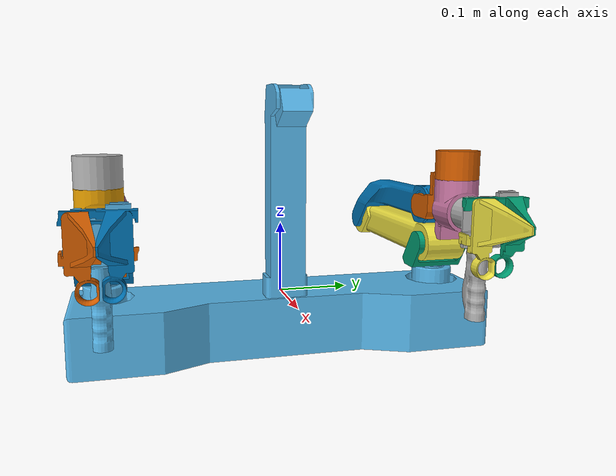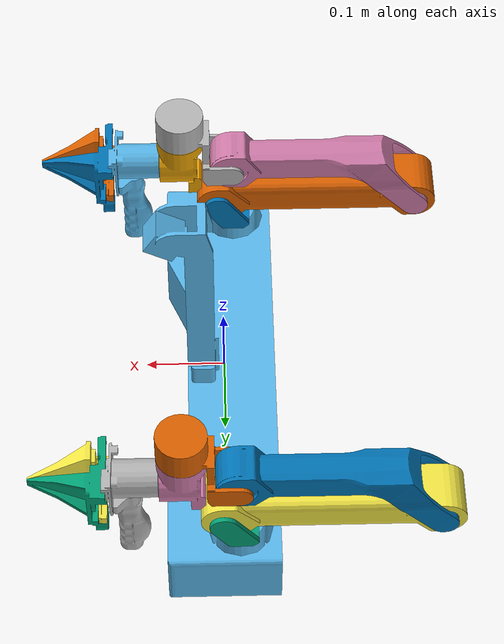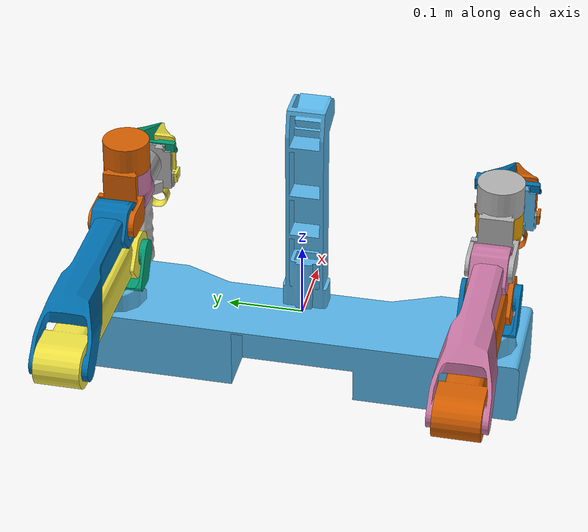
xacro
<?xml version="1.0"?>
<robot name="acone"
  xmlns:xacro="http://www.ros.org/wiki/xacro">

  <xacro:property name="mesh_dir" value="package://genie_sim_robot_model/robots/arx/acone/meshes" />

  <link name="base_link">
    <visual>
      <origin xyz="0 0 0" rpy="0 0 0"/>
      <geometry><sphere radius="0.001"/></geometry>
    </visual>
  </link>
  <link name="base_link_inertia">
    <inertial>
      <origin xyz="0.0040185 3.8157E-05 -0.024465" rpy="0 0 0" />
      <mass value="5.6137" />
      <inertia ixx="0.21931" ixy="0.00000" ixz="-0.00199" iyy="0.02598" iyz="0.00000" izz="0.20840" />
    </inertial>
    <visual>
      <origin xyz="0 0 0" rpy="0 0 0" />
      <geometry><mesh filename="${mesh_dir}/base_link.obj" /></geometry>
    </visual>
    <collision>
      <origin xyz="0 0 0" rpy="0 0 0" />
      <geometry><mesh filename="${mesh_dir}/base_link.obj" /></geometry>
    </collision>
  </link>
  <joint name="base_link-base_link_inertia" type="fixed">
    <origin xyz="0 0 0" rpy="0 0 0" />
    <parent link="base_link" />
    <child link="base_link_inertia" />
  </joint>

  <!-- ============================ LEFT ARM ============================ -->

  <link name="arm_l_link1">
    <inertial>
      <origin xyz="0.0054231 -0.0080289 0.017086" rpy="0 0 0" />
      <mass value="0.066982" />
      <inertia ixx="0.00008" ixy="0.00000" ixz="-0.00001" iyy="0.00003" iyz="0.00000" izz="0.00008" />
    </inertial>
    <visual>
      <origin xyz="0 0 0" rpy="0 0 0" />
      <geometry><mesh filename="${mesh_dir}/arm_l_link1.obj" /></geometry>
    </visual>
    <collision>
      <origin xyz="0 0 0" rpy="0 0 0" />
      <geometry><mesh filename="${mesh_dir}/arm_l_link1.obj" /></geometry>
    </collision>
  </link>
  <joint name="arm_l_joint1" type="revolute">
    <origin xyz="-0.01602 0.25 0.0215" rpy="0 0 0" />
    <parent link="base_link" />
    <child link="arm_l_link1" />
    <axis xyz="0 0 1" />
    <limit lower="-3.14159" upper="3.14159" effort="30" velocity="5.0" />
  </joint>

  <link name="arm_l_link2">
    <inertial>
      <origin xyz="-0.13234 -0.0040166 0.00010941" rpy="0 0 0" />
      <mass value="1.1068" />
      <inertia ixx="0.00054" ixy="0.00000" ixz="0.00004" iyy="0.01653" iyz="0.00000" izz="0.01655" />
    </inertial>
    <visual>
      <origin xyz="0 0 0" rpy="0 0 0" />
      <geometry><mesh filename="${mesh_dir}/arm_l_link2.obj" /></geometry>
    </visual>
    <collision>
      <origin xyz="0 0 0" rpy="0 0 0" />
      <geometry><mesh filename="${mesh_dir}/arm_l_link2.obj" /></geometry>
    </collision>
  </link>
  <joint name="arm_l_joint2" type="revolute">
    <origin xyz="0.02 0 0.04" rpy="0 0 0" />
    <parent link="arm_l_link1" />
    <child link="arm_l_link2" />
    <axis xyz="0 1 0" />
    <limit lower="-0.05" upper="3.5" effort="40" velocity="5.0" />
  </joint>

  <link name="arm_l_link3">
    <inertial>
      <origin xyz="0.18544 -0.00071369 0.051628" rpy="0 0 0" />
      <mass value="0.54316" />
      <inertia ixx="0.00036" ixy="-0.00003" ixz="-0.00039" iyy="0.00423" iyz="-0.00001" izz="0.00419" />
    </inertial>
    <visual>
      <origin xyz="0 0 0" rpy="0 0 0" />
      <geometry><mesh filename="${mesh_dir}/arm_l_link3.obj" /></geometry>
    </visual>
    <collision>
      <origin xyz="0 0 0" rpy="0 0 0" />
      <geometry><mesh filename="${mesh_dir}/arm_l_link3.obj" /></geometry>
    </collision>
  </link>
  <joint name="arm_l_joint3" type="revolute">
    <origin xyz="-0.264 3E-05 0" rpy="0 0 0" />
    <parent link="arm_l_link2" />
    <child link="arm_l_link3" />
    <axis xyz="0 -1 0" />
    <limit lower="0.0" upper="3.2" effort="30" velocity="5.5" />
  </joint>

  <link name="arm_l_link4">
    <inertial>
      <origin xyz="0.039966 -0.0043045 0.035006" rpy="0 0 0" />
      <mass value="0.11827" />
      <inertia ixx="0.00019" ixy="-0.00002" ixz="-0.00009" iyy="0.00023" iyz="-0.00002" izz="0.00014" />
    </inertial>
    <visual>
      <origin xyz="0 0 0" rpy="0 0 0" />
      <geometry><mesh filename="${mesh_dir}/arm_l_link4.obj" /></geometry>
    </visual>
    <collision>
      <origin xyz="0 0 0" rpy="0 0 0" />
      <geometry><mesh filename="${mesh_dir}/arm_l_link4.obj" /></geometry>
    </collision>
  </link>
  <joint name="arm_l_joint4" type="revolute">
    <origin xyz="0.245 -3E-05 0.056" rpy="0 0 0" />
    <parent link="arm_l_link3" />
    <child link="arm_l_link4" />
    <axis xyz="0 -1 0" />
    <limit lower="-1.6" upper="1.55" effort="15" velocity="5.5" />
  </joint>

  <link name="arm_l_link5">
    <inertial>
      <origin xyz="0.0029491 8.4086E-05 -0.054795" rpy="0 0 0" />
      <mass value="0.67398" />
      <inertia ixx="0.00093" ixy="0.00000" ixz="0.00005" iyy="0.00092" iyz="0.00000" izz="0.00028" />
    </inertial>
    <visual>
      <origin xyz="0 0 0" rpy="0 0 0" />
      <geometry><mesh filename="${mesh_dir}/arm_l_link5.obj" /></geometry>
    </visual>
    <collision>
      <origin xyz="0 0 0" rpy="0 0 0" />
      <geometry><mesh filename="${mesh_dir}/arm_l_link5.obj" /></geometry>
    </collision>
  </link>
  <joint name="arm_l_joint5" type="revolute">
    <origin xyz="0.06775 0 0.0845" rpy="0 0 0" />
    <parent link="arm_l_link4" />
    <child link="arm_l_link5" />
    <axis xyz="0 0 -1" />
    <limit lower="-1.57" upper="1.57" effort="10" velocity="5.0" />
  </joint>

  <link name="arm_l_link6">
    <inertial>
      <origin xyz="0.040212 3.4542E-05 -0.010225" rpy="0 0 0" />
      <mass value="0.34667" />
      <inertia ixx="0.00047" ixy="0.00000" ixz="-0.00003" iyy="0.00049" iyz="-0.00003" izz="0.00018" />
    </inertial>
    <visual>
      <origin xyz="0 0 0" rpy="0 0 0" />
      <geometry><mesh filename="${mesh_dir}/arm_l_link6.obj" /></geometry>
    </visual>
    <visual>
      <origin xyz="0 0 0" rpy="0 0 0" />
      <geometry><mesh filename="${mesh_dir}/arm_l_link6_1.obj" /></geometry>
    </visual>
    <collision>
      <origin xyz="0 0 0" rpy="0 0 0" />
      <geometry><mesh filename="${mesh_dir}/arm_l_link6.obj" /></geometry>
    </collision>
  </link>
  <joint name="arm_l_joint6" type="revolute">
    <origin xyz="0.02895 0 -0.0845" rpy="0 0 0" />
    <parent link="arm_l_link5" />
    <child link="arm_l_link6" />
    <axis xyz="1 0 0" />
    <limit lower="-2.0" upper="2.0" effort="10" velocity="5.0" />
  </joint>

  <link name="arm_l_end_link">
    <inertial>
      <origin xyz="0 0 0" rpy="0 0 0" />
      <mass value="1e-6" />
      <inertia ixx="1e-9" ixy="0" ixz="0" iyy="1e-9" iyz="0" izz="1e-9" />
    </inertial>
  </link>
  <joint name="arm_l_end_fixed" type="fixed">
    <origin xyz="0 0 0" rpy="0 0 0" />
    <parent link="arm_l_link6" />
    <child link="arm_l_end_link" />
  </joint>

  <link name="gripper_l_base_link">
    <inertial>
      <origin xyz="0 0 0" rpy="0 0 0" />
      <mass value="1e-6" />
      <inertia ixx="1e-9" ixy="0" ixz="0" iyy="1e-9" iyz="0" izz="1e-9" />
    </inertial>
  </link>
  <joint name="gripper_l_base_fixed" type="fixed">
    <origin xyz="0 0 0" rpy="0 0 0" />
    <parent link="arm_l_end_link" />
    <child link="gripper_l_base_link" />
  </joint>

  <link name="gripper_l_passive_link">
    <inertial>
      <origin xyz="-0.0060354 -0.015602 0.013499" rpy="0 0 0" />
      <mass value="0.08924" />
      <inertia ixx="0.00010" ixy="0.00000" ixz="0.00001" iyy="0.00009" iyz="0.00001" izz="0.00007" />
    </inertial>
    <visual>
      <origin xyz="0 0 0" rpy="0 0 0" />
      <geometry><mesh filename="${mesh_dir}/gripper_l_passive_link.obj" /></geometry>
    </visual>
    <collision>
      <origin xyz="0 0 0" rpy="0 0 0" />
      <geometry><mesh filename="${mesh_dir}/convex/gripper_l_passive_link_collider_01.STL" /></geometry>
    </collision>
    <collision>
      <origin xyz="0 0 0" rpy="0 0 0" />
      <geometry><mesh filename="${mesh_dir}/convex/gripper_l_passive_link_collider_02.STL" /></geometry>
    </collision>
    <collision>
      <origin xyz="0 0 0" rpy="0 0 0" />
      <geometry><mesh filename="${mesh_dir}/convex/gripper_l_passive_link_collider_03.STL" /></geometry>
    </collision>
    <collision>
      <origin xyz="0 0 0" rpy="0 0 0" />
      <geometry><mesh filename="${mesh_dir}/convex/gripper_l_passive_link_collider_04.STL" /></geometry>
    </collision>
    <collision>
      <origin xyz="0 0 0" rpy="0 0 0" />
      <geometry><mesh filename="${mesh_dir}/convex/gripper_l_passive_link_collider_05.STL" /></geometry>
    </collision>
    <collision>
      <origin xyz="0 0 0" rpy="0 0 0" />
      <geometry><mesh filename="${mesh_dir}/convex/gripper_l_passive_link_collider_06.STL" /></geometry>
    </collision>
    <collision>
      <origin xyz="0 0 0" rpy="0 0 0" />
      <geometry><mesh filename="${mesh_dir}/convex/gripper_l_passive_link_collider_07.STL" /></geometry>
    </collision>
  </link>
  <joint name="gripper_l_passive_joint" type="prismatic">
    <origin xyz="0.08397 0.02721 -0.0062702" rpy="0 0 0" />
    <parent link="gripper_l_base_link" />
    <child link="gripper_l_passive_link" />
    <axis xyz="0 1 0" />
    <limit lower="0" upper="0.044" effort="10" velocity="0.5" />
    <mimic joint="gripper_l_active_joint" multiplier="1" offset="0" />
  </joint>

  <link name="gripper_l_active_link">
    <inertial>
      <origin xyz="-0.00581 0.015593 -0.012255" rpy="0 0 0" />
      <mass value="0.089402" />
      <inertia ixx="0.00007" ixy="0.00000" ixz="-0.00002" iyy="0.00006" iyz="0.00000" izz="0.00007" />
    </inertial>
    <visual>
      <origin xyz="0 0 0" rpy="0 0 0" />
      <geometry><mesh filename="${mesh_dir}/gripper_l_active_link.obj" /></geometry>
    </visual>
    <collision>
      <origin xyz="0 0 0" rpy="0 0 0" />
      <geometry><mesh filename="${mesh_dir}/convex/gripper_l_active_link_collider_01.STL" /></geometry>
    </collision>
    <collision>
      <origin xyz="0 0 0" rpy="0 0 0" />
      <geometry><mesh filename="${mesh_dir}/convex/gripper_l_active_link_collider_02.STL" /></geometry>
    </collision>
    <collision>
      <origin xyz="0 0 0" rpy="0 0 0" />
      <geometry><mesh filename="${mesh_dir}/convex/gripper_l_active_link_collider_03.STL" /></geometry>
    </collision>
    <collision>
      <origin xyz="0 0 0" rpy="0 0 0" />
      <geometry><mesh filename="${mesh_dir}/convex/gripper_l_active_link_collider_04.STL" /></geometry>
    </collision>
    <collision>
      <origin xyz="0 0 0" rpy="0 0 0" />
      <geometry><mesh filename="${mesh_dir}/convex/gripper_l_active_link_collider_05.STL" /></geometry>
    </collision>
    <collision>
      <origin xyz="0 0 0" rpy="0 0 0" />
      <geometry><mesh filename="${mesh_dir}/convex/gripper_l_active_link_collider_06.STL" /></geometry>
    </collision>
    <collision>
      <origin xyz="0 0 0" rpy="0 0 0" />
      <geometry><mesh filename="${mesh_dir}/convex/gripper_l_active_link_collider_07.STL" /></geometry>
    </collision>
  </link>
  <joint name="gripper_l_active_joint" type="prismatic">
    <origin xyz="0.08397 -0.023638 -0.0062703" rpy="0 0 0" />
    <parent link="gripper_l_base_link" />
    <child link="gripper_l_active_link" />
    <axis xyz="0 -1 0" />
    <limit lower="0" upper="0.044" effort="10" velocity="0.5" />
  </joint>

  <!-- ============================ RIGHT ARM ============================ -->

  <link name="arm_r_link1">
    <inertial>
      <origin xyz="0.0054231 -0.0080289 0.017086" rpy="0 0 0" />
      <mass value="0.066982" />
      <inertia ixx="0.00008" ixy="0.00000" ixz="-0.00001" iyy="0.00003" iyz="0.00000" izz="0.00008" />
    </inertial>
    <visual>
      <origin xyz="0 0 0" rpy="0 0 0" />
      <geometry><mesh filename="${mesh_dir}/arm_r_link1.obj" /></geometry>
    </visual>
    <collision>
      <origin xyz="0 0 0" rpy="0 0 0" />
      <geometry><mesh filename="${mesh_dir}/arm_r_link1.obj" /></geometry>
    </collision>
  </link>
  <joint name="arm_r_joint1" type="revolute">
    <origin xyz="-0.01602 -0.25 0.0215" rpy="0 0 0" />
    <parent link="base_link" />
    <child link="arm_r_link1" />
    <axis xyz="0 0 1" />
    <limit lower="-3.14159" upper="3.14159" effort="30" velocity="5.0" />
  </joint>

  <link name="arm_r_link2">
    <inertial>
      <origin xyz="-0.13234 -0.0040166 0.00010941" rpy="0 0 0" />
      <mass value="1.1068" />
      <inertia ixx="0.00054" ixy="0.00000" ixz="0.00004" iyy="0.01653" iyz="0.00000" izz="0.01655" />
    </inertial>
    <visual>
      <origin xyz="0 0 0" rpy="0 0 0" />
      <geometry><mesh filename="${mesh_dir}/arm_r_link2.obj" /></geometry>
    </visual>
    <collision>
      <origin xyz="0 0 0" rpy="0 0 0" />
      <geometry><mesh filename="${mesh_dir}/arm_r_link2.obj" /></geometry>
    </collision>
  </link>
  <joint name="arm_r_joint2" type="revolute">
    <origin xyz="0.02 0 0.04" rpy="0 0 0" />
    <parent link="arm_r_link1" />
    <child link="arm_r_link2" />
    <axis xyz="0 1 0" />
    <limit lower="-0.05" upper="3.5" effort="40" velocity="5.0" />
  </joint>

  <link name="arm_r_link3">
    <inertial>
      <origin xyz="0.18544 -0.00071369 0.051628" rpy="0 0 0" />
      <mass value="0.54316" />
      <inertia ixx="0.00036" ixy="-0.00003" ixz="-0.00039" iyy="0.00423" iyz="-0.00001" izz="0.00419" />
    </inertial>
    <visual>
      <origin xyz="0 0 0" rpy="0 0 0" />
      <geometry><mesh filename="${mesh_dir}/arm_r_link3.obj" /></geometry>
    </visual>
    <collision>
      <origin xyz="0 0 0" rpy="0 0 0" />
      <geometry><mesh filename="${mesh_dir}/arm_r_link3.obj" /></geometry>
    </collision>
  </link>
  <joint name="arm_r_joint3" type="revolute">
    <origin xyz="-0.264 3E-05 0" rpy="0 0 0" />
    <parent link="arm_r_link2" />
    <child link="arm_r_link3" />
    <axis xyz="0 -1 0" />
    <limit lower="0.0" upper="3.2" effort="30" velocity="5.5" />
  </joint>

  <link name="arm_r_link4">
    <inertial>
      <origin xyz="0.039966 -0.0043045 0.035006" rpy="0 0 0" />
      <mass value="0.11827" />
      <inertia ixx="0.00019" ixy="-0.00002" ixz="-0.00009" iyy="0.00023" iyz="-0.00002" izz="0.00014" />
    </inertial>
    <visual>
      <origin xyz="0 0 0" rpy="0 0 0" />
      <geometry><mesh filename="${mesh_dir}/arm_r_link4.obj" /></geometry>
    </visual>
    <collision>
      <origin xyz="0 0 0" rpy="0 0 0" />
      <geometry><mesh filename="${mesh_dir}/arm_r_link4.obj" /></geometry>
    </collision>
  </link>
  <joint name="arm_r_joint4" type="revolute">
    <origin xyz="0.245 -3E-05 0.056" rpy="0 0 0" />
    <parent link="arm_r_link3" />
    <child link="arm_r_link4" />
    <axis xyz="0 -1 0" />
    <limit lower="-1.6" upper="1.55" effort="15" velocity="5.5" />
  </joint>

  <link name="arm_r_link5">
    <inertial>
      <origin xyz="0.0029491 8.4086E-05 -0.054795" rpy="0 0 0" />
      <mass value="0.67398" />
      <inertia ixx="0.00093" ixy="0.00000" ixz="0.00005" iyy="0.00092" iyz="0.00000" izz="0.00028" />
    </inertial>
    <visual>
      <origin xyz="0 0 0" rpy="0 0 0" />
      <geometry><mesh filename="${mesh_dir}/arm_r_link5.obj" /></geometry>
    </visual>
    <collision>
      <origin xyz="0 0 0" rpy="0 0 0" />
      <geometry><mesh filename="${mesh_dir}/arm_r_link5.obj" /></geometry>
    </collision>
  </link>
  <joint name="arm_r_joint5" type="revolute">
    <origin xyz="0.06775 0 0.0845" rpy="0 0 0" />
    <parent link="arm_r_link4" />
    <child link="arm_r_link5" />
    <axis xyz="0 0 -1" />
    <limit lower="-1.57" upper="1.57" effort="10" velocity="5.0" />
  </joint>

  <link name="arm_r_link6">
    <inertial>
      <origin xyz="0.040212 3.4542E-05 -0.010225" rpy="0 0 0" />
      <mass value="0.34667" />
      <inertia ixx="0.00047" ixy="0.00000" ixz="-0.00003" iyy="0.00049" iyz="-0.00003" izz="0.00018" />
    </inertial>
    <visual>
      <origin xyz="0 0 0" rpy="0 0 0" />
      <geometry><mesh filename="${mesh_dir}/arm_r_link6.obj" /></geometry>
    </visual>
    <visual>
      <origin xyz="0 0 0" rpy="0 0 0" />
      <geometry><mesh filename="${mesh_dir}/arm_r_link6_1.obj" /></geometry>
    </visual>
    <collision>
      <origin xyz="0 0 0" rpy="0 0 0" />
      <geometry><mesh filename="${mesh_dir}/arm_r_link6.obj" /></geometry>
    </collision>
  </link>
  <joint name="arm_r_joint6" type="revolute">
    <origin xyz="0.02895 0 -0.0845" rpy="0 0 0" />
    <parent link="arm_r_link5" />
    <child link="arm_r_link6" />
    <axis xyz="1 0 0" />
    <limit lower="-2.0" upper="2.0" effort="10" velocity="5.0" />
  </joint>

  <link name="arm_r_end_link">
    <inertial>
      <origin xyz="0 0 0" rpy="0 0 0" />
      <mass value="1e-6" />
      <inertia ixx="1e-9" ixy="0" ixz="0" iyy="1e-9" iyz="0" izz="1e-9" />
    </inertial>
  </link>
  <joint name="arm_r_end_fixed" type="fixed">
    <origin xyz="0 0 0" rpy="0 0 0" />
    <parent link="arm_r_link6" />
    <child link="arm_r_end_link" />
  </joint>

  <link name="gripper_r_base_link">
    <inertial>
      <origin xyz="0 0 0" rpy="0 0 0" />
      <mass value="1e-6" />
      <inertia ixx="1e-9" ixy="0" ixz="0" iyy="1e-9" iyz="0" izz="1e-9" />
    </inertial>
  </link>
  <joint name="gripper_r_base_fixed" type="fixed">
    <origin xyz="0 0 0" rpy="0 0 0" />
    <parent link="arm_r_end_link" />
    <child link="gripper_r_base_link" />
  </joint>

  <link name="gripper_r_active_link">
    <inertial>
      <origin xyz="-0.0060354 -0.015602 0.013499" rpy="0 0 0" />
      <mass value="0.08924" />
      <inertia ixx="0.00010" ixy="0.00000" ixz="0.00001" iyy="0.00009" iyz="0.00001" izz="0.00007" />
    </inertial>
    <visual>
      <origin xyz="0 0 0" rpy="0 0 0" />
      <geometry><mesh filename="${mesh_dir}/gripper_r_active_link.obj" /></geometry>
    </visual>
    <collision>
      <origin xyz="0 0 0" rpy="0 0 0" />
      <geometry><mesh filename="${mesh_dir}/convex/gripper_r_active_link_collider_01.STL" /></geometry>
    </collision>
    <collision>
      <origin xyz="0 0 0" rpy="0 0 0" />
      <geometry><mesh filename="${mesh_dir}/convex/gripper_r_active_link_collider_02.STL" /></geometry>
    </collision>
    <collision>
      <origin xyz="0 0 0" rpy="0 0 0" />
      <geometry><mesh filename="${mesh_dir}/convex/gripper_r_active_link_collider_03.STL" /></geometry>
    </collision>
    <collision>
      <origin xyz="0 0 0" rpy="0 0 0" />
      <geometry><mesh filename="${mesh_dir}/convex/gripper_r_active_link_collider_04.STL" /></geometry>
    </collision>
    <collision>
      <origin xyz="0 0 0" rpy="0 0 0" />
      <geometry><mesh filename="${mesh_dir}/convex/gripper_r_active_link_collider_05.STL" /></geometry>
    </collision>
    <collision>
      <origin xyz="0 0 0" rpy="0 0 0" />
      <geometry><mesh filename="${mesh_dir}/convex/gripper_r_active_link_collider_06.STL" /></geometry>
    </collision>
    <collision>
      <origin xyz="0 0 0" rpy="0 0 0" />
      <geometry><mesh filename="${mesh_dir}/convex/gripper_r_active_link_collider_07.STL" /></geometry>
    </collision>
  </link>
  <joint name="gripper_r_active_joint" type="prismatic">
    <origin xyz="0.08397 0.02721 -0.0062702" rpy="0 0 0" />
    <parent link="gripper_r_base_link" />
    <child link="gripper_r_active_link" />
    <axis xyz="0 1 0" />
    <limit lower="0" upper="0.044" effort="10" velocity="0.5" />
  </joint>

  <link name="gripper_r_passive_link">
    <inertial>
      <origin xyz="-0.00581 0.015593 -0.012255" rpy="0 0 0" />
      <mass value="0.089402" />
      <inertia ixx="0.00007" ixy="0.00000" ixz="-0.00002" iyy="0.00006" iyz="0.00000" izz="0.00007" />
    </inertial>
    <visual>
      <origin xyz="0 0 0" rpy="0 0 0" />
      <geometry><mesh filename="${mesh_dir}/gripper_r_passive_link.obj" /></geometry>
    </visual>
    <collision>
      <origin xyz="0 0 0" rpy="0 0 0" />
      <geometry><mesh filename="${mesh_dir}/convex/gripper_r_passive_link_collider_01.STL" /></geometry>
    </collision>
    <collision>
      <origin xyz="0 0 0" rpy="0 0 0" />
      <geometry><mesh filename="${mesh_dir}/convex/gripper_r_passive_link_collider_02.STL" /></geometry>
    </collision>
    <collision>
      <origin xyz="0 0 0" rpy="0 0 0" />
      <geometry><mesh filename="${mesh_dir}/convex/gripper_r_passive_link_collider_03.STL" /></geometry>
    </collision>
    <collision>
      <origin xyz="0 0 0" rpy="0 0 0" />
      <geometry><mesh filename="${mesh_dir}/convex/gripper_r_passive_link_collider_04.STL" /></geometry>
    </collision>
    <collision>
      <origin xyz="0 0 0" rpy="0 0 0" />
      <geometry><mesh filename="${mesh_dir}/convex/gripper_r_passive_link_collider_05.STL" /></geometry>
    </collision>
    <collision>
      <origin xyz="0 0 0" rpy="0 0 0" />
      <geometry><mesh filename="${mesh_dir}/convex/gripper_r_passive_link_collider_06.STL" /></geometry>
    </collision>
    <collision>
      <origin xyz="0 0 0" rpy="0 0 0" />
      <geometry><mesh filename="${mesh_dir}/convex/gripper_r_passive_link_collider_07.STL" /></geometry>
    </collision>
  </link>
  <joint name="gripper_r_passive_joint" type="prismatic">
    <origin xyz="0.08397 -0.023638 -0.0062703" rpy="0 0 0" />
    <parent link="gripper_r_base_link" />
    <child link="gripper_r_passive_link" />
    <axis xyz="0 -1 0" />
    <limit lower="0" upper="0.044" effort="10" velocity="0.5" />
    <mimic joint="gripper_r_active_joint" multiplier="1" offset="0" />
  </joint>

</robot>
